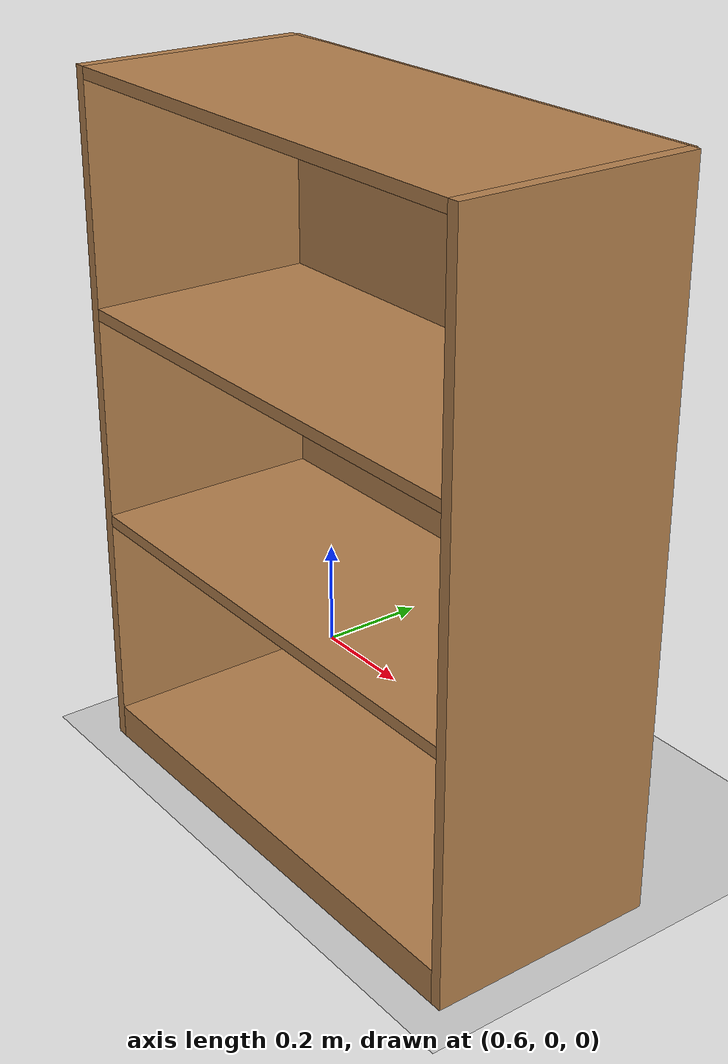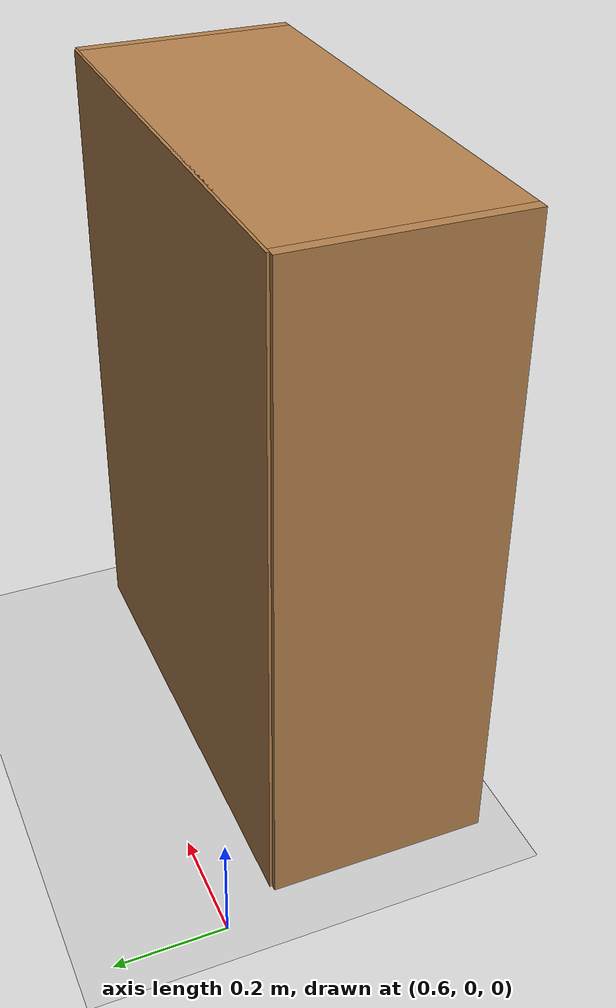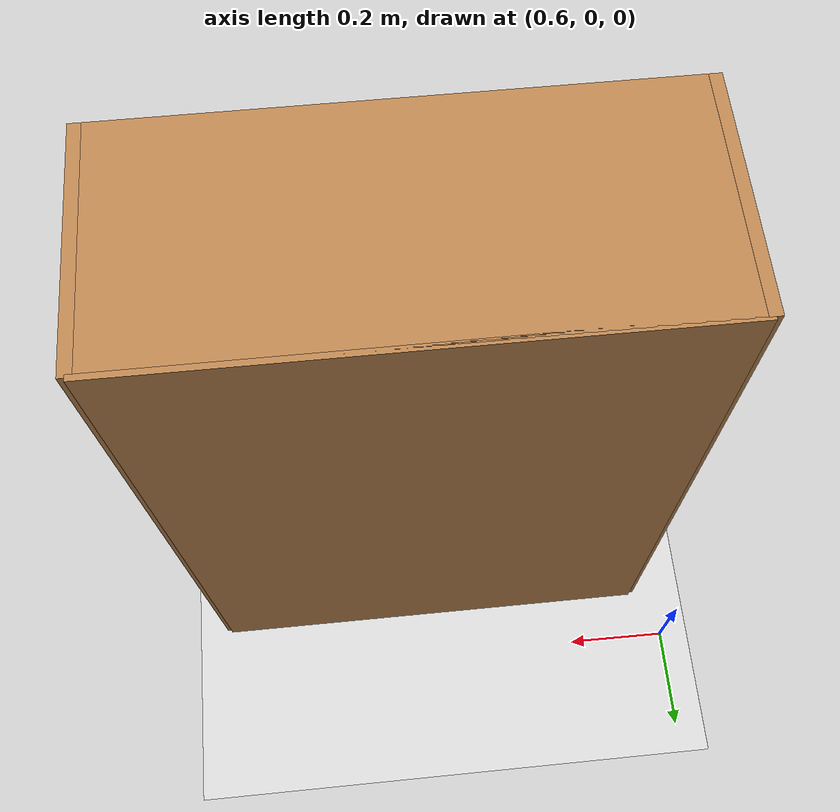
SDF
<sdf version="1.4">
 <world name="default">
  <include><uri>model://sun</uri></include>
  <include><uri>model://ground_plane</uri></include>
  <physics type="ode">
   <real_time_update_rate>1000.0</real_time_update_rate>
   <max_step_size>0.001</max_step_size>
   <real_time_factor>1</real_time_factor>
   <ode>
    <solver>
     <type>quick</type>
     <iters>150</iters>
     <precon_iters>0</precon_iters>
     <sor>1.400000</sor>
     <use_dynamic_moi_rescaling>1</use_dynamic_moi_rescaling>
    </solver>
    <constraints>
     <cfm>0.00001</cfm>
     <erp>0.2</erp>
     <contact_max_correcting_vel>2000.000000</contact_max_correcting_vel>
     <contact_surface_layer>0.01000</contact_surface_layer>
    </constraints>
   </ode>
  </physics>
  <model name="bookshelf_2">
   <static>1</static>
   <link name="link">
    <inertial><mass>1</mass></inertial>
    <collision name="back">
     <pose>0 0.005 0.6 0 -0 0</pose>
     <geometry><box><size>0.9 0.01 1.2</size></box></geometry>
    </collision>
    <visual name="visual1">
     <pose>0 0.005 0.6 0 -0 0</pose>
     <geometry><box><size>0.9 0.01 1.2</size></box></geometry>
     <material>
      <script><uri>file://media/materials/scripts/gazebo.material</uri><name>Gazebo/Wood</name></script>
     </material>
    </visual>
    <collision name="left_side">
     <pose>0.45 -0.195 0.6 0 -0 0</pose>
     <geometry><box><size>0.02 0.4 1.2</size></box></geometry>
    </collision>
    <visual name="visual2">
     <pose>0.45 -0.195 0.6 0 -0 0</pose>
     <geometry><box><size>0.02 0.4 1.2</size></box></geometry>
     <material>
      <script><uri>file://media/materials/scripts/gazebo.material</uri><name>Gazebo/Wood</name></script>
     </material>
    </visual>
    <collision name="right_side">
     <pose>-0.45 -0.195 0.6 0 -0 0</pose>
     <geometry><box><size>0.02 0.4 1.2</size></box></geometry>
    </collision>
    <visual name="visual3">
     <pose>-0.45 -0.195 0.6 0 -0 0</pose>
     <geometry><box><size>0.02 0.4 1.2</size></box></geometry>
     <material>
      <script><uri>file://media/materials/scripts/gazebo.material</uri><name>Gazebo/Wood</name></script>
     </material>
    </visual>
    <collision name="bottom">
     <pose>0 -0.195 0.03 0 -0 0</pose>
     <geometry><box><size>0.88 0.4 0.06</size></box></geometry>
    </collision>
    <visual name="visual4">
     <pose>0 -0.195 0.03 0 -0 0</pose>
     <geometry><box><size>0.88 0.4 0.06</size></box></geometry>
     <material>
      <script><uri>file://media/materials/scripts/gazebo.material</uri><name>Gazebo/Wood</name></script>
     </material>
    </visual>
    <collision name="top">
     <pose>0 -0.195 1.19 0 -0 0</pose>
     <geometry><box><size>0.88 0.4 0.02</size></box></geometry>
    </collision>
    <visual name="visual5">
     <pose>0 -0.195 1.19 0 -0 0</pose>
     <geometry><box><size>0.88 0.4 0.02</size></box></geometry>
     <material>
      <script><uri>file://media/materials/scripts/gazebo.material</uri><name>Gazebo/Wood</name></script>
     </material>
    </visual>
    <collision name="low_shelf">
     <pose>0 -0.195 0.43 0 -0 0</pose>
     <geometry><box><size>0.88 0.4 0.02</size></box></geometry>
    </collision>
    <visual name="visual6">
     <pose>0 -0.195 0.43 0 -0 0</pose>
     <geometry><box><size>0.88 0.4 0.02</size></box></geometry>
     <material>
      <script><uri>file://media/materials/scripts/gazebo.material</uri><name>Gazebo/Wood</name></script>
     </material>
    </visual>
    <collision name="high_shelf">
     <pose>0 -0.195 0.8 0 -0 0</pose>
     <geometry><box><size>0.88 0.4 0.02</size></box></geometry>
    </collision>
    <visual name="visual7">
     <pose>0 -0.195 0.8 0 -0 0</pose>
     <geometry><box><size>0.88 0.4 0.02</size></box></geometry>
     <material>
      <script><uri>file://media/materials/scripts/gazebo.material</uri><name>Gazebo/Wood</name></script>
     </material>
    </visual>
   </link>
   <pose>1.10427 -0.108414 -0 0 -0 0</pose>
  </model>
 </world>
</sdf>
